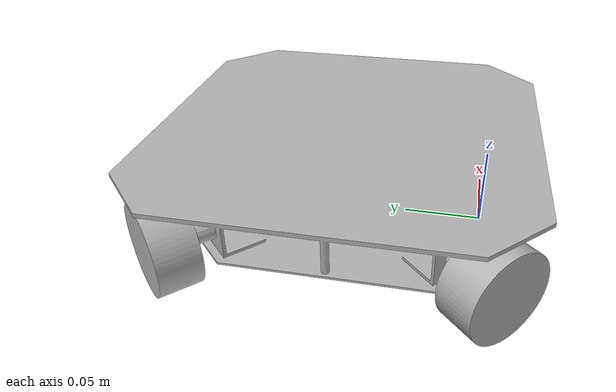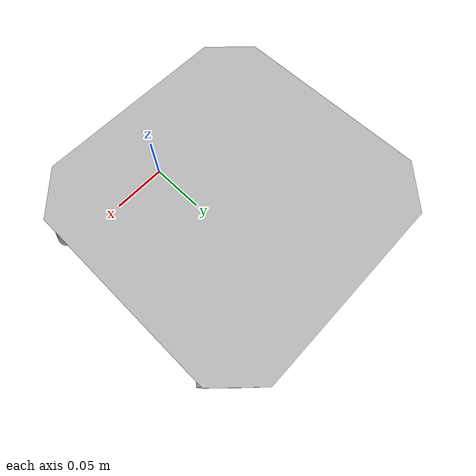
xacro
<?xml version="1.0"?>
<!-- Basic differential drive mobile base -->
<robot xmlns:xacro="http://www.ros.org/wiki/xacro" name="custom_hardware">
  <xacro:arg name="prefix" default="" />

  <!-- Import urdf description -->
  <xacro:include filename="$(find omni_drive_arduino)/urdf/diffbot_description.urdf.xacro" />

  <!-- Import Rviz colors -->
  <xacro:include filename="$(find omni_drive_arduino)/urdf/diffbot.materials.xacro" />

  <!-- Import diffbot ros2_control description -->
  <xacro:include filename="$(find omni_drive_arduino)/ros2_control/diffbot.ros2_control.xacro" />

  <xacro:omnibot prefix="$(arg prefix)" />

  <xacro:omnibot_ros2_control
    name="omnibot" prefix="$(arg prefix)" />

</robot>

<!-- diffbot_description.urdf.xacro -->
<robot xmlns:xacro="http://www.ros.org/wiki/xacro">

  <xacro:macro name="omnibot" params="prefix">

    <!-- Base Link -->
    <link name="${prefix}base_link">
    <visual>
      <origin xyz="0 0 0" rpy="0 0 0"/>
      <geometry>
        <mesh filename="file://$(find omni_drive_arduino)/meshes/base_link.stl" scale="0.001 0.001 0.001"/>
      </geometry>
      <material name="silver"/>
    </visual>
    <collision>
      <origin xyz="0 0 0" rpy="0 0 0"/>
      <geometry>
        <mesh filename="file://$(find omni_drive_arduino)/meshes/base_link.stl" scale="0.001 0.001 0.001"/>
      </geometry>
    </collision>
    </link>

    <!-- first wheel Link -->
    <link name="${prefix}first_wheel">
    <inertial>
      <origin xyz="-0.008838754757050732 0.00883870623777197 -3.5401586982383715e-07" rpy="0 0 0"/>
      <mass value="0.4662565284394176"/>
      <inertia ixx="0.000144" iyy="0.000144" izz="0.000112" ixy="-3.2e-05" iyz="-0.0" ixz="0.0"/>
    </inertial>
    <visual>
      <origin xyz="0.090188 -0.165897 -0.029411" rpy="0 0 0"/>
      <geometry>
        <mesh filename="file://$(find omni_drive_arduino)/meshes/wheel_1_1.stl" scale="0.001 0.001 0.001"/>
      </geometry>
      <material name="silver"/>
    </visual>
    <collision>
      <origin xyz="0.090188 -0.165897 -0.029411" rpy="0 0 0"/>
      <geometry>
        <mesh filename="file://$(find omni_drive_arduino)/meshes/wheel_1_1.stl" scale="0.001 0.001 0.001"/>
      </geometry>
    </collision>
    </link>

    <!-- second wheel Link -->
    <link name="${prefix}second_wheel">
      <inertial>
        <origin xyz="0.008838662424130797 0.008838700986665754 -3.540158698273066e-07" rpy="0 0 0"/>
        <mass value="0.4662565284394172"/>
        <inertia ixx="0.000144" iyy="0.000144" izz="0.000112" ixy="3.2e-05" iyz="-0.0" ixz="-0.0"/>
      </inertial>
      <visual>
        <origin xyz="-0.071606 -0.165897 -0.029411" rpy="0 0 0"/>
        <geometry>
          <mesh filename="file://$(find omni_drive_arduino)/meshes/wheel_2_1.stl" scale="0.001 0.001 0.001"/>
        </geometry>
        <material name="silver"/>
      </visual>
      <collision>
        <origin xyz="-0.071606 -0.165897 -0.029411" rpy="0 0 0"/>
        <geometry>
          <mesh filename="file://$(find omni_drive_arduino)/meshes/wheel_2_1.stl" scale="0.001 0.001 0.001"/>
        </geometry>
      </collision>
    </link>

    <!-- third wheel Link -->
    <link name="${prefix}third_wheel">
      <inertial>
        <origin xyz="0.008838657854423254 -0.008838698794982992 -3.540158718083608e-07" rpy="0 0 0"/>
        <mass value="0.46625652843941695"/>
        <inertia ixx="0.000144" iyy="0.000144" izz="0.000112" ixy="-3.2e-05" iyz="-0.0" ixz="0.0"/>
      </inertial>
      <visual>
        <origin xyz="-0.071606 -0.004103 -0.029411" rpy="0 0 0"/>
        <geometry>
          <mesh filename="file://$(find omni_drive_arduino)/meshes/wheel_3_1.stl" scale="0.001 0.001 0.001"/>
        </geometry>
        <material name="silver"/>
      </visual>
      <collision>
        <origin xyz="-0.071606 -0.004103 -0.029411" rpy="0 0 0"/>
        <geometry>
          <mesh filename="file://$(find omni_drive_arduino)/meshes/wheel_3_1.stl" scale="0.001 0.001 0.001"/>
        </geometry>
      </collision>
    </link>

    <!-- fourth wheel Link -->
    <link name="${prefix}fourth_wheel">
      <inertial>
        <origin xyz="-0.008838851711757023 -0.008838538089336623 -3.54015869799551e-07" rpy="0 0 0"/>
        <mass value="0.4662565284394167"/>
        <inertia ixx="0.000144" iyy="0.000144" izz="0.000112" ixy="3.2e-05" iyz="0.0" ixz="0.0"/>
      </inertial>
      <visual>
        <origin xyz="0.090188 -0.004103 -0.029411" rpy="0 0 0"/>
        <geometry>
          <mesh filename="file://$(find omni_drive_arduino)/meshes/wheel_4_1.stl" scale="0.001 0.001 0.001"/>
        </geometry>
        <material name="silver"/>
      </visual>
      <collision>
        <origin xyz="0.090188 -0.004103 -0.029411" rpy="0 0 0"/>
        <geometry>
          <mesh filename="file://$(find omni_drive_arduino)/meshes/wheel_4_1.stl" scale="0.001 0.001 0.001"/>
        </geometry>
      </collision>
    </link>

    <!-- first wheel joint -->
    <joint name="${prefix}first_wheel_joint" type="continuous">
      <origin xyz="-0.090188 0.165897 0.029411" rpy="0 0 0"/>
      <parent link="${prefix}base_link"/>
      <child link="${prefix}first_wheel"/>
      <axis xyz="0.707107 -0.707107 -0.0"/>
    </joint>

    <!-- second wheel joint -->
    <joint name="${prefix}second_wheel_joint" type="continuous">
      <origin xyz="0.071606 0.165897 0.029411" rpy="0 0 0"/>
      <parent link="${prefix}base_link"/>
      <child link="${prefix}second_wheel"/>
      <axis xyz="-0.707107 -0.707106 -0.0"/>
    </joint>

    <!-- third wheel joint -->
    <joint name="${prefix}third_wheel_joint" type="continuous">
      <origin xyz="0.071606 0.004103 0.029411" rpy="0 0 0"/>
      <parent link="${prefix}base_link"/>
      <child link="${prefix}third_wheel"/>
      <axis xyz="0.707107 -0.707106 0.0"/>
    </joint>

    <!-- fourth wheel joint -->
    <joint name="${prefix}fourth_wheel_joint" type="continuous">
      <origin xyz="-0.090188 0.004103 0.029411" rpy="0 0 0"/>
      <parent link="${prefix}base_link"/>
      <child link="${prefix}fourth_wheel"/>
      <axis xyz="0.707107 0.707106 -0.0"/>
    </joint>

  </xacro:macro>

</robot>

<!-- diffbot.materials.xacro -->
<robot xmlns:xacro="http://www.ros.org/wiki/xacro">
  <material name="silver">
    <color rgba="0.700 0.700 0.700 1.000"/>
  </material>
</robot>
